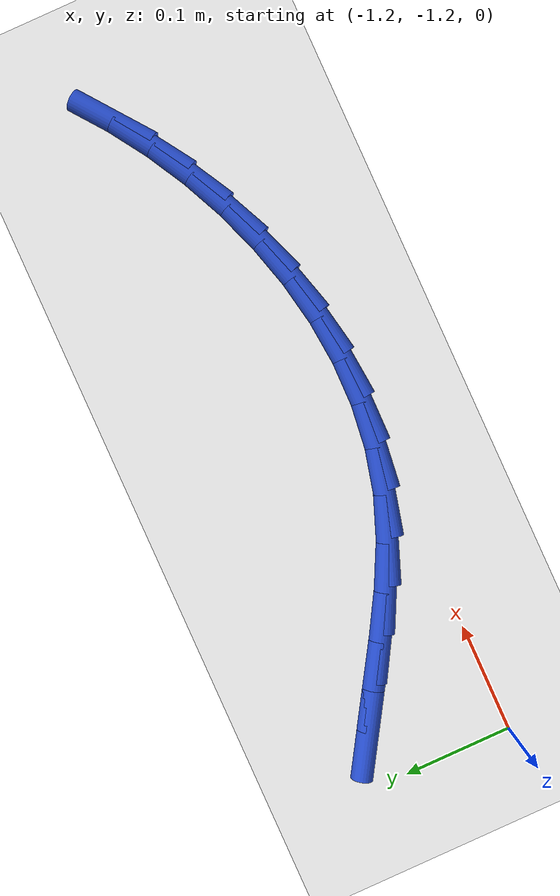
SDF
<sdf version="1.6">
 <world name="default">
  <model name="ground_plane">
   <static>1</static>
   <link name="link">
    <collision name="collision">
     <geometry><plane><normal>0 0 1</normal><size>100 100</size></plane></geometry>
     <surface><friction><ode><mu>100</mu><mu2>50</mu2></ode></friction></surface>
    </collision>
    <visual name="visual">
     <cast_shadows>0</cast_shadows>
     <geometry><plane><normal>0 0 1</normal><size>100 100</size></plane></geometry>
     <material>
      <script><uri>file://media/materials/scripts/gazebo.material</uri><name>Gazebo/WhiteGlow</name></script>
     </material>
    </visual>
   </link>
  </model>
  <model name="line">
   <link name="link_144">
    <pose>-1.1493250272738493 -1.083479899108811 0.01 0 1.57 -0.554459690734568</pose>
    <collision name="collision">
     <geometry><cylinder><radius>0.01</radius><length>0.08</length></cylinder></geometry>
    </collision>
    <visual name="visual">
     <material>
      <script><name>Gazebo/Blue</name><uri>file://media/materials/scripts/gazebo.material</uri></script>
     </material>
     <geometry><cylinder><radius>0.01</radius><length>0.08</length></cylinder></geometry>
    </visual>
   </link>
   <link name="link_145">
    <pose>-1.112734980282161 -1.1061385841880749 0.01 0 1.57 -0.5569301989169463</pose>
    <collision name="collision">
     <geometry><cylinder><radius>0.01</radius><length>0.08</length></cylinder></geometry>
    </collision>
    <visual name="visual">
     <material>
      <script><name>Gazebo/Blue</name><uri>file://media/materials/scripts/gazebo.material</uri></script>
     </material>
     <geometry><cylinder><radius>0.01</radius><length>0.08</length></cylinder></geometry>
    </visual>
   </link>
   <link name="link_146">
    <pose>-1.0758153194386018 -1.1291277666596116 0.01 0 1.57 -0.5269797875501545</pose>
    <collision name="collision">
     <geometry><cylinder><radius>0.01</radius><length>0.08</length></cylinder></geometry>
    </collision>
    <visual name="visual">
     <material>
      <script><name>Gazebo/Blue</name><uri>file://media/materials/scripts/gazebo.material</uri></script>
     </material>
     <geometry><cylinder><radius>0.01</radius><length>0.08</length></cylinder></geometry>
    </visual>
   </link>
   <link name="link_147">
    <pose>-1.0383233815657025 -1.150943092548761 0.01 0 1.57 -0.463306646942331</pose>
    <collision name="collision">
     <geometry><cylinder><radius>0.01</radius><length>0.08</length></cylinder></geometry>
    </collision>
    <visual name="visual">
     <material>
      <script><name>Gazebo/Blue</name><uri>file://media/materials/scripts/gazebo.material</uri></script>
     </material>
     <geometry><cylinder><radius>0.01</radius><length>0.08</length></cylinder></geometry>
    </visual>
   </link>
   <link name="link_148">
    <pose>-1.0000165034859922 -1.1700802078808612 0.01 0 1.57 -0.3631785387058863</pose>
    <collision name="collision">
     <geometry><cylinder><radius>0.01</radius><length>0.08</length></cylinder></geometry>
    </collision>
    <visual name="visual">
     <material>
      <script><name>Gazebo/Blue</name><uri>file://media/materials/scripts/gazebo.material</uri></script>
     </material>
     <geometry><cylinder><radius>0.01</radius><length>0.08</length></cylinder></geometry>
    </visual>
   </link>
   <link name="link_149">
    <pose>-0.9606535941918507 -1.18503953370296 0.01 0 1.57 -0.2389196802062473</pose>
    <collision name="collision">
     <geometry><cylinder><radius>0.01</radius><length>0.08</length></cylinder></geometry>
    </collision>
    <visual name="visual">
     <material>
      <script><name>Gazebo/Blue</name><uri>file://media/materials/scripts/gazebo.material</uri></script>
     </material>
     <geometry><cylinder><radius>0.01</radius><length>0.08</length></cylinder></geometry>
    </visual>
   </link>
   <link name="link_150">
    <pose>-0.920183055903536 -1.1948970232012073 0.01 0 1.57 -0.11935039765655917</pose>
    <collision name="collision">
     <geometry><cylinder><radius>0.01</radius><length>0.08</length></cylinder></geometry>
    </collision>
    <visual name="visual">
     <material>
      <script><name>Gazebo/Blue</name><uri>file://media/materials/scripts/gazebo.material</uri></script>
     </material>
     <geometry><cylinder><radius>0.01</radius><length>0.08</length></cylinder></geometry>
    </visual>
   </link>
   <link name="link_151">
    <pose>-0.8789209179012653 -1.199845192884773 0.01 0 1.57 -0.00862143723803256</pose>
    <collision name="collision">
     <geometry><cylinder><radius>0.01</radius><length>0.08</length></cylinder></geometry>
    </collision>
    <visual name="visual">
     <material>
      <script><name>Gazebo/Blue</name><uri>file://media/materials/scripts/gazebo.material</uri></script>
     </material>
     <geometry><cylinder><radius>0.01</radius><length>0.08</length></cylinder></geometry>
    </visual>
   </link>
   <link name="link_152">
    <pose>-0.8372253921174089 -1.200204677150193 0.01 0 1.57 0.0933002973336769</pose>
    <collision name="collision">
     <geometry><cylinder><radius>0.01</radius><length>0.08</length></cylinder></geometry>
    </collision>
    <visual name="visual">
     <material>
      <script><name>Gazebo/Blue</name><uri>file://media/materials/scripts/gazebo.material</uri></script>
     </material>
     <geometry><cylinder><radius>0.01</radius><length>0.08</length></cylinder></geometry>
    </visual>
   </link>
   <link name="link_153">
    <pose>-0.7954546904843338 -1.1962961103940015 0.01 0 1.57 0.1871413582834441</pose>
    <collision name="collision">
     <geometry><cylinder><radius>0.01</radius><length>0.08</length></cylinder></geometry>
    </collision>
    <visual name="visual">
     <material>
      <script><name>Gazebo/Blue</name><uri>file://media/materials/scripts/gazebo.material</uri></script>
     </material>
     <geometry><cylinder><radius>0.01</radius><length>0.08</length></cylinder></geometry>
    </visual>
   </link>
   <link name="link_154">
    <pose>-0.75396702493441 -1.1884401270127332 0.01 0 1.57 0.2740474463943559</pose>
    <collision name="collision">
     <geometry><cylinder><radius>0.01</radius><length>0.08</length></cylinder></geometry>
    </collision>
    <visual name="visual">
     <material>
      <script><name>Gazebo/Blue</name><uri>file://media/materials/scripts/gazebo.material</uri></script>
     </material>
     <geometry><cylinder><radius>0.01</radius><length>0.08</length></cylinder></geometry>
    </visual>
   </link>
   <link name="link_155">
    <pose>-0.7131206074000064 -1.1769573614029232 0.01 0 1.57 0.35538477943856783</pose>
    <collision name="collision">
     <geometry><cylinder><radius>0.01</radius><length>0.08</length></cylinder></geometry>
    </collision>
    <visual name="visual">
     <material>
      <script><name>Gazebo/Blue</name><uri>file://media/materials/scripts/gazebo.material</uri></script>
     </material>
     <geometry><cylinder><radius>0.01</radius><length>0.08</length></cylinder></geometry>
    </visual>
   </link>
   <link name="link_156">
    <pose>-0.6732736498134919 -1.1621684479611059 0.01 0 1.57 0.4326249643432217</pose>
    <collision name="collision">
     <geometry><cylinder><radius>0.01</radius><length>0.08</length></cylinder></geometry>
    </collision>
    <visual name="visual">
     <material>
      <script><name>Gazebo/Blue</name><uri>file://media/materials/scripts/gazebo.material</uri></script>
     </material>
     <geometry><cylinder><radius>0.01</radius><length>0.08</length></cylinder></geometry>
    </visual>
   </link>
   <link name="link_157">
    <pose>-0.6347843641072352 -1.1443940210838153 0.01 0 1.57 0.5072987637610653</pose>
    <collision name="collision">
     <geometry><cylinder><radius>0.01</radius><length>0.08</length></cylinder></geometry>
    </collision>
    <visual name="visual">
     <material>
      <script><name>Gazebo/Blue</name><uri>file://media/materials/scripts/gazebo.material</uri></script>
     </material>
     <geometry><cylinder><radius>0.01</radius><length>0.08</length></cylinder></geometry>
    </visual>
   </link>
   <link name="link_158">
    <pose>-0.5980109622136053 -1.1239547151675873 0.01 0 1.57 0.5809643224696123</pose>
    <collision name="collision">
     <geometry><cylinder><radius>0.01</radius><length>0.08</length></cylinder></geometry>
    </collision>
    <visual name="visual">
     <material>
      <script><name>Gazebo/Blue</name><uri>file://media/materials/scripts/gazebo.material</uri></script>
     </material>
     <geometry><cylinder><radius>0.01</radius><length>0.08</length></cylinder></geometry>
    </visual>
   </link>
   <link name="link_159">
    <pose>-0.5633069598734993 -1.1011698866143818 0.01 0 1.57 0.6532215211849408</pose>
    <collision name="collision">
     <geometry><cylinder><radius>0.01</radius><length>0.08</length></cylinder></geometry>
    </collision>
    <visual name="visual">
     <material>
      <script><name>Gazebo/Blue</name><uri>file://media/materials/scripts/gazebo.material</uri></script>
     </material>
     <geometry><cylinder><radius>0.01</radius><length>0.08</length></cylinder></geometry>
    </visual>
   </link>
  </model>
 </world>
</sdf>
